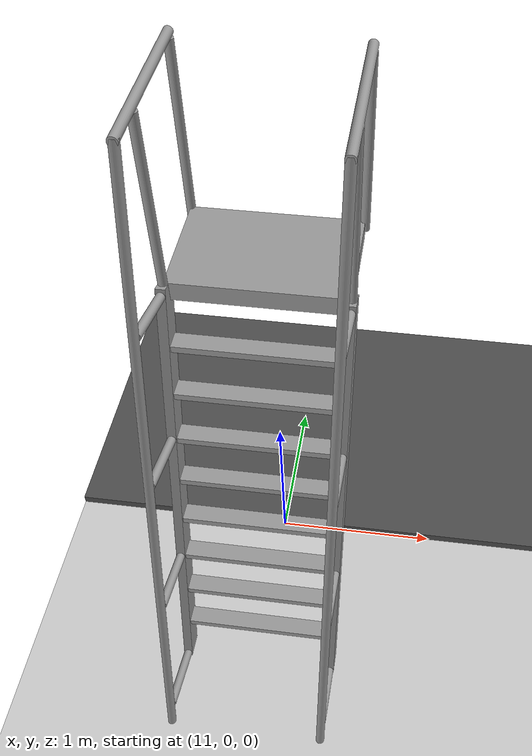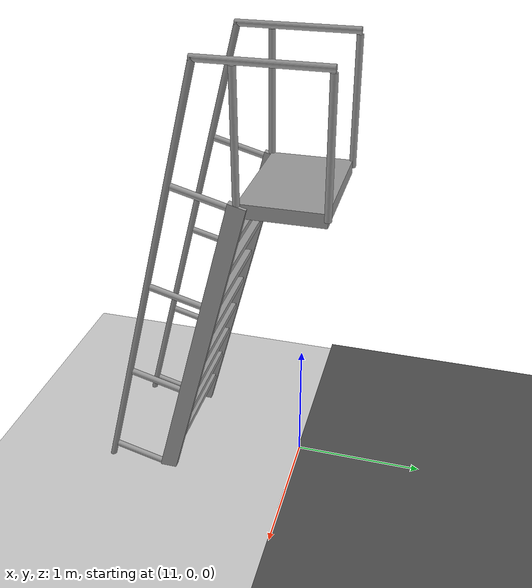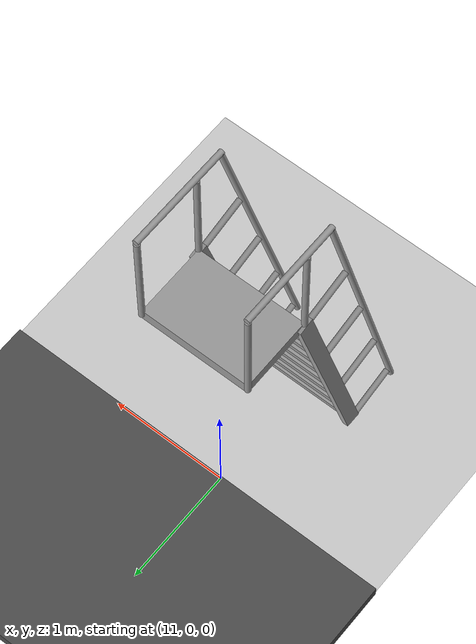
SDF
<sdf version="1.4">
 <world name="default">
  <model name="ground_plane">
   <static>1</static>
   <link name="link">
    <collision name="collision">
     <geometry><plane><normal>0 0 1</normal><size>100 100</size></plane></geometry>
     <surface><friction><ode><mu>100</mu><mu2>50</mu2></ode></friction></surface>
    </collision>
    <visual name="visual">
     <cast_shadows>0</cast_shadows>
     <geometry><plane><normal>0 0 1</normal><size>100 100</size></plane></geometry>
     <material>
      <script><uri>file://media/materials/scripts/gazebo.material</uri><name>Gazebo/Grey</name></script>
     </material>
    </visual>
    <velocity_decay><linear>0</linear><angular>0</angular></velocity_decay>
   </link>
  </model>
  <model name="asphalt_plane">
   <static>1</static>
   <link name="link">
    <collision name="collision"><geometry><box><size>20 20 0.1</size></box></geometry></collision>
    <visual name="visual">
     <cast_shadows>0</cast_shadows>
     <geometry><box><size>20 20 0.1</size></box></geometry>
     <material>
      <script>
       <uri>model://asphalt_plane/materials/scripts</uri>
       <uri>model://asphalt_plane/materials/textures</uri>
       <name>vrc/asphalt</name>
      </script>
     </material>
    </visual>
    <velocity_decay><linear>0</linear><angular>0</angular></velocity_decay>
   </link>
   <pose>10 10 0 0 -0 0</pose>
  </model>
  <model name="ladder_75deg_2rails_0">
   <static>1</static>
   <link name="step0">
    <pose>0 0.0714531 0.266667 0 -0 0</pose>
    <inertial>
     <mass>9.75482</mass>
     <inertia>
      <ixx>0.00957124</ixx>
      <iyy>0.65963</iyy>
      <izz>0.666842</izz>
      <ixy>0</ixy>
      <ixz>0</ixz>
      <iyz>0</iyz>
     </inertia>
    </inertial>
    <collision name="collision"><geometry><box><size>0.9 0.1016 0.0381</size></box></geometry></collision>
    <visual name="visual">
     <geometry><box><size>0.9 0.1016 0.0381</size></box></geometry>
     <material>
      <script><uri>file://media/materials/scripts/gazebo.material</uri><name>Gazebo/Grey</name></script>
     </material>
    </visual>
    <velocity_decay><linear>0</linear><angular>0</angular></velocity_decay>
   </link>
   <link name="step1">
    <pose>0 0.142906 0.533333 0 -0 0</pose>
    <inertial>
     <mass>9.75482</mass>
     <inertia>
      <ixx>0.00957124</ixx>
      <iyy>0.65963</iyy>
      <izz>0.666842</izz>
      <ixy>0</ixy>
      <ixz>0</ixz>
      <iyz>0</iyz>
     </inertia>
    </inertial>
    <collision name="collision"><geometry><box><size>0.9 0.1016 0.0381</size></box></geometry></collision>
    <visual name="visual">
     <geometry><box><size>0.9 0.1016 0.0381</size></box></geometry>
     <material>
      <script><uri>file://media/materials/scripts/gazebo.material</uri><name>Gazebo/Grey</name></script>
     </material>
    </visual>
    <velocity_decay><linear>0</linear><angular>0</angular></velocity_decay>
   </link>
   <link name="step2">
    <pose>0 0.214359 0.8 0 -0 0</pose>
    <inertial>
     <mass>9.75482</mass>
     <inertia>
      <ixx>0.00957124</ixx>
      <iyy>0.65963</iyy>
      <izz>0.666842</izz>
      <ixy>0</ixy>
      <ixz>0</ixz>
      <iyz>0</iyz>
     </inertia>
    </inertial>
    <collision name="collision"><geometry><box><size>0.9 0.1016 0.0381</size></box></geometry></collision>
    <visual name="visual">
     <geometry><box><size>0.9 0.1016 0.0381</size></box></geometry>
     <material>
      <script><uri>file://media/materials/scripts/gazebo.material</uri><name>Gazebo/Grey</name></script>
     </material>
    </visual>
    <velocity_decay><linear>0</linear><angular>0</angular></velocity_decay>
   </link>
   <link name="step3">
    <pose>0 0.285812 1.06667 0 -0 0</pose>
    <inertial>
     <mass>9.75482</mass>
     <inertia>
      <ixx>0.00957124</ixx>
      <iyy>0.65963</iyy>
      <izz>0.666842</izz>
      <ixy>0</ixy>
      <ixz>0</ixz>
      <iyz>0</iyz>
     </inertia>
    </inertial>
    <collision name="collision"><geometry><box><size>0.9 0.1016 0.0381</size></box></geometry></collision>
    <visual name="visual">
     <geometry><box><size>0.9 0.1016 0.0381</size></box></geometry>
     <material>
      <script><uri>file://media/materials/scripts/gazebo.material</uri><name>Gazebo/Grey</name></script>
     </material>
    </visual>
    <velocity_decay><linear>0</linear><angular>0</angular></velocity_decay>
   </link>
   <link name="step4">
    <pose>0 0.357266 1.33333 0 -0 0</pose>
    <inertial>
     <mass>9.75482</mass>
     <inertia>
      <ixx>0.00957124</ixx>
      <iyy>0.65963</iyy>
      <izz>0.666842</izz>
      <ixy>0</ixy>
      <ixz>0</ixz>
      <iyz>0</iyz>
     </inertia>
    </inertial>
    <collision name="collision"><geometry><box><size>0.9 0.1016 0.0381</size></box></geometry></collision>
    <visual name="visual">
     <geometry><box><size>0.9 0.1016 0.0381</size></box></geometry>
     <material>
      <script><uri>file://media/materials/scripts/gazebo.material</uri><name>Gazebo/Grey</name></script>
     </material>
    </visual>
    <velocity_decay><linear>0</linear><angular>0</angular></velocity_decay>
   </link>
   <link name="step5">
    <pose>0 0.428719 1.6 0 -0 0</pose>
    <inertial>
     <mass>9.75482</mass>
     <inertia>
      <ixx>0.00957124</ixx>
      <iyy>0.65963</iyy>
      <izz>0.666842</izz>
      <ixy>0</ixy>
      <ixz>0</ixz>
      <iyz>0</iyz>
     </inertia>
    </inertial>
    <collision name="collision"><geometry><box><size>0.9 0.1016 0.0381</size></box></geometry></collision>
    <visual name="visual">
     <geometry><box><size>0.9 0.1016 0.0381</size></box></geometry>
     <material>
      <script><uri>file://media/materials/scripts/gazebo.material</uri><name>Gazebo/Grey</name></script>
     </material>
    </visual>
    <velocity_decay><linear>0</linear><angular>0</angular></velocity_decay>
   </link>
   <link name="step6">
    <pose>0 0.500172 1.86667 0 -0 0</pose>
    <inertial>
     <mass>9.75482</mass>
     <inertia>
      <ixx>0.00957124</ixx>
      <iyy>0.65963</iyy>
      <izz>0.666842</izz>
      <ixy>0</ixy>
      <ixz>0</ixz>
      <iyz>0</iyz>
     </inertia>
    </inertial>
    <collision name="collision"><geometry><box><size>0.9 0.1016 0.0381</size></box></geometry></collision>
    <visual name="visual">
     <geometry><box><size>0.9 0.1016 0.0381</size></box></geometry>
     <material>
      <script><uri>file://media/materials/scripts/gazebo.material</uri><name>Gazebo/Grey</name></script>
     </material>
    </visual>
    <velocity_decay><linear>0</linear><angular>0</angular></velocity_decay>
   </link>
   <link name="step7">
    <pose>0 0.571625 2.13333 0 -0 0</pose>
    <inertial>
     <mass>9.75482</mass>
     <inertia>
      <ixx>0.00957124</ixx>
      <iyy>0.65963</iyy>
      <izz>0.666842</izz>
      <ixy>0</ixy>
      <ixz>0</ixz>
      <iyz>0</iyz>
     </inertia>
    </inertial>
    <collision name="collision"><geometry><box><size>0.9 0.1016 0.0381</size></box></geometry></collision>
    <visual name="visual">
     <geometry><box><size>0.9 0.1016 0.0381</size></box></geometry>
     <material>
      <script><uri>file://media/materials/scripts/gazebo.material</uri><name>Gazebo/Grey</name></script>
     </material>
    </visual>
    <velocity_decay><linear>0</linear><angular>0</angular></velocity_decay>
   </link>
   <link name="landing">
    <pose>0 0.943078 2.4 0 -0 0</pose>
    <inertial>
     <mass>57.6072</mass>
     <inertia><ixx>1.73518</ixx><iyy>3.89545</iyy><izz>5.6167</izz><ixy>0</ixy><ixz>0</ixz><iyz>0</iyz></inertia>
    </inertial>
    <collision name="collision"><geometry><box><size>0.9 0.6 0.1016</size></box></geometry></collision>
    <visual name="visual">
     <geometry><box><size>0.9 0.6 0.1016</size></box></geometry>
     <material>
      <script><uri>file://media/materials/scripts/gazebo.material</uri><name>Gazebo/Grey</name></script>
     </material>
    </visual>
    <velocity_decay><linear>0</linear><angular>0</angular></velocity_decay>
   </link>
   <link name="left_side_wall">
    <pose>-0.45 0.321539 1.2 1.309 -0 0</pose>
    <collision name="collision"><geometry><box><size>0.0508 2.56466 0.13</size></box></geometry></collision>
    <visual name="visual">
     <geometry><box><size>0.0508 2.56466 0.13</size></box></geometry>
     <material>
      <script><uri>file://media/materials/scripts/gazebo.material</uri><name>Gazebo/Grey</name></script>
     </material>
    </visual>
    <velocity_decay><linear>0</linear><angular>0</angular></velocity_decay>
   </link>
   <link name="right_side_wall">
    <pose>0.45 0.321539 1.2 1.309 -0 0</pose>
    <collision name="collision"><geometry><box><size>0.0508 2.56466 0.13</size></box></geometry></collision>
    <visual name="visual">
     <geometry><box><size>0.0508 2.56466 0.13</size></box></geometry>
     <material>
      <script><uri>file://media/materials/scripts/gazebo.material</uri><name>Gazebo/Grey</name></script>
     </material>
    </visual>
    <velocity_decay><linear>0</linear><angular>0</angular></velocity_decay>
   </link>
   <link name="left_railing_long">
    <pose>-0.45 -0.053461 1.66651 -0.261799 0 0</pose>
    <collision name="collision">
     <geometry><cylinder><radius>0.02413</radius><length>3.51529</length></cylinder></geometry>
    </collision>
    <visual name="visual">
     <geometry><cylinder><radius>0.02413</radius><length>3.51529</length></cylinder></geometry>
     <material>
      <script><uri>file://media/materials/scripts/gazebo.material</uri><name>Gazebo/Grey</name></script>
     </material>
    </visual>
    <velocity_decay><linear>0</linear><angular>0</angular></velocity_decay>
   </link>
   <link name="left_railing_upright0">
    <pose>-0.45 -0.210089 0.0562931 1.309 -0 0</pose>
    <collision name="collision">
     <geometry><cylinder><radius>0.02413</radius><length>0.482963</length></cylinder></geometry>
    </collision>
    <visual name="visual">
     <geometry><cylinder><radius>0.02413</radius><length>0.482963</length></cylinder></geometry>
     <material>
      <script><uri>file://media/materials/scripts/gazebo.material</uri><name>Gazebo/Grey</name></script>
     </material>
    </visual>
    <velocity_decay><linear>0</linear><angular>0</angular></velocity_decay>
   </link>
   <link name="left_railing_upright1">
    <pose>-0.45 0.00427049 0.856293 1.309 -0 0</pose>
    <collision name="collision">
     <geometry><cylinder><radius>0.02413</radius><length>0.482963</length></cylinder></geometry>
    </collision>
    <visual name="visual">
     <geometry><cylinder><radius>0.02413</radius><length>0.482963</length></cylinder></geometry>
     <material>
      <script><uri>file://media/materials/scripts/gazebo.material</uri><name>Gazebo/Grey</name></script>
     </material>
    </visual>
    <velocity_decay><linear>0</linear><angular>0</angular></velocity_decay>
   </link>
   <link name="left_railing_upright2">
    <pose>-0.45 0.21863 1.65629 1.309 -0 0</pose>
    <collision name="collision">
     <geometry><cylinder><radius>0.02413</radius><length>0.482963</length></cylinder></geometry>
    </collision>
    <visual name="visual">
     <geometry><cylinder><radius>0.02413</radius><length>0.482963</length></cylinder></geometry>
     <material>
      <script><uri>file://media/materials/scripts/gazebo.material</uri><name>Gazebo/Grey</name></script>
     </material>
    </visual>
    <velocity_decay><linear>0</linear><angular>0</angular></velocity_decay>
   </link>
   <link name="left_railing_upright3">
    <pose>-0.45 0.432989 2.45629 1.309 -0 0</pose>
    <collision name="collision">
     <geometry><cylinder><radius>0.02413</radius><length>0.482963</length></cylinder></geometry>
    </collision>
    <visual name="visual">
     <geometry><cylinder><radius>0.02413</radius><length>0.482963</length></cylinder></geometry>
     <material>
      <script><uri>file://media/materials/scripts/gazebo.material</uri><name>Gazebo/Grey</name></script>
     </material>
    </visual>
    <velocity_decay><linear>0</linear><angular>0</angular></velocity_decay>
   </link>
   <link name="left_railing_landing_top">
    <pose>-0.45 0.818078 3.35714 1.5708 -0 0</pose>
    <collision name="collision">
     <geometry><cylinder><radius>0.02413</radius><length>0.87413</length></cylinder></geometry>
    </collision>
    <visual name="visual">
     <geometry><cylinder><radius>0.02413</radius><length>0.87413</length></cylinder></geometry>
     <material>
      <script><uri>file://media/materials/scripts/gazebo.material</uri><name>Gazebo/Grey</name></script>
     </material>
    </visual>
    <velocity_decay><linear>0</linear><angular>0</angular></velocity_decay>
   </link>
   <link name="left_railing_landing_upright_0">
    <pose>-0.45 0.643078 2.86651 0 -0 0</pose>
    <collision name="collision">
     <geometry><cylinder><radius>0.02413</radius><length>0.933013</length></cylinder></geometry>
    </collision>
    <visual name="visual">
     <geometry><cylinder><radius>0.02413</radius><length>0.933013</length></cylinder></geometry>
     <material>
      <script><uri>file://media/materials/scripts/gazebo.material</uri><name>Gazebo/Grey</name></script>
     </material>
    </visual>
    <velocity_decay><linear>0</linear><angular>0</angular></velocity_decay>
   </link>
   <link name="left_railing_landing_upright_1">
    <pose>-0.45 1.24308 2.86651 0 -0 0</pose>
    <collision name="collision">
     <geometry><cylinder><radius>0.02413</radius><length>0.933013</length></cylinder></geometry>
    </collision>
    <visual name="visual">
     <geometry><cylinder><radius>0.02413</radius><length>0.933013</length></cylinder></geometry>
     <material>
      <script><uri>file://media/materials/scripts/gazebo.material</uri><name>Gazebo/Grey</name></script>
     </material>
    </visual>
    <velocity_decay><linear>0</linear><angular>0</angular></velocity_decay>
   </link>
   <link name="right_railing_long">
    <pose>0.45 -0.053461 1.66651 -0.261799 0 0</pose>
    <collision name="collision">
     <geometry><cylinder><radius>0.02413</radius><length>3.51529</length></cylinder></geometry>
    </collision>
    <visual name="visual">
     <geometry><cylinder><radius>0.02413</radius><length>3.51529</length></cylinder></geometry>
     <material>
      <script><uri>file://media/materials/scripts/gazebo.material</uri><name>Gazebo/Grey</name></script>
     </material>
    </visual>
    <velocity_decay><linear>0</linear><angular>0</angular></velocity_decay>
   </link>
   <link name="right_railing_upright0">
    <pose>0.45 -0.210089 0.0562931 1.309 -0 0</pose>
    <collision name="collision">
     <geometry><cylinder><radius>0.02413</radius><length>0.482963</length></cylinder></geometry>
    </collision>
    <visual name="visual">
     <geometry><cylinder><radius>0.02413</radius><length>0.482963</length></cylinder></geometry>
     <material>
      <script><uri>file://media/materials/scripts/gazebo.material</uri><name>Gazebo/Grey</name></script>
     </material>
    </visual>
    <velocity_decay><linear>0</linear><angular>0</angular></velocity_decay>
   </link>
   <link name="right_railing_upright1">
    <pose>0.45 0.00427049 0.856293 1.309 -0 0</pose>
    <collision name="collision">
     <geometry><cylinder><radius>0.02413</radius><length>0.482963</length></cylinder></geometry>
    </collision>
    <visual name="visual">
     <geometry><cylinder><radius>0.02413</radius><length>0.482963</length></cylinder></geometry>
     <material>
      <script><uri>file://media/materials/scripts/gazebo.material</uri><name>Gazebo/Grey</name></script>
     </material>
    </visual>
    <velocity_decay><linear>0</linear><angular>0</angular></velocity_decay>
   </link>
   <link name="right_railing_upright2">
    <pose>0.45 0.21863 1.65629 1.309 -0 0</pose>
    <collision name="collision">
     <geometry><cylinder><radius>0.02413</radius><length>0.482963</length></cylinder></geometry>
    </collision>
    <visual name="visual">
     <geometry><cylinder><radius>0.02413</radius><length>0.482963</length></cylinder></geometry>
     <material>
      <script><uri>file://media/materials/scripts/gazebo.material</uri><name>Gazebo/Grey</name></script>
     </material>
    </visual>
    <velocity_decay><linear>0</linear><angular>0</angular></velocity_decay>
   </link>
   <link name="right_railing_upright3">
    <pose>0.45 0.432989 2.45629 1.309 -0 0</pose>
    <collision name="collision">
     <geometry><cylinder><radius>0.02413</radius><length>0.482963</length></cylinder></geometry>
    </collision>
    <visual name="visual">
     <geometry><cylinder><radius>0.02413</radius><length>0.482963</length></cylinder></geometry>
     <material>
      <script><uri>file://media/materials/scripts/gazebo.material</uri><name>Gazebo/Grey</name></script>
     </material>
    </visual>
    <velocity_decay><linear>0</linear><angular>0</angular></velocity_decay>
   </link>
   <link name="right_railing_landing_top">
    <pose>0.45 0.818078 3.35714 1.5708 -0 0</pose>
    <collision name="collision">
     <geometry><cylinder><radius>0.02413</radius><length>0.87413</length></cylinder></geometry>
    </collision>
    <visual name="visual">
     <geometry><cylinder><radius>0.02413</radius><length>0.87413</length></cylinder></geometry>
     <material>
      <script><uri>file://media/materials/scripts/gazebo.material</uri><name>Gazebo/Grey</name></script>
     </material>
    </visual>
    <velocity_decay><linear>0</linear><angular>0</angular></velocity_decay>
   </link>
   <link name="right_railing_landing_upright_0">
    <pose>0.45 0.643078 2.86651 0 -0 0</pose>
    <collision name="collision">
     <geometry><cylinder><radius>0.02413</radius><length>0.933013</length></cylinder></geometry>
    </collision>
    <visual name="visual">
     <geometry><cylinder><radius>0.02413</radius><length>0.933013</length></cylinder></geometry>
     <material>
      <script><uri>file://media/materials/scripts/gazebo.material</uri><name>Gazebo/Grey</name></script>
     </material>
    </visual>
    <velocity_decay><linear>0</linear><angular>0</angular></velocity_decay>
   </link>
   <link name="right_railing_landing_upright_1">
    <pose>0.45 1.24308 2.86651 0 -0 0</pose>
    <collision name="collision">
     <geometry><cylinder><radius>0.02413</radius><length>0.933013</length></cylinder></geometry>
    </collision>
    <visual name="visual">
     <geometry><cylinder><radius>0.02413</radius><length>0.933013</length></cylinder></geometry>
     <material>
      <script><uri>file://media/materials/scripts/gazebo.material</uri><name>Gazebo/Grey</name></script>
     </material>
    </visual>
    <velocity_decay><linear>0</linear><angular>0</angular></velocity_decay>
   </link>
   <pose>11 -1 0 0 -0 0</pose>
  </model>
 </world>
</sdf>
